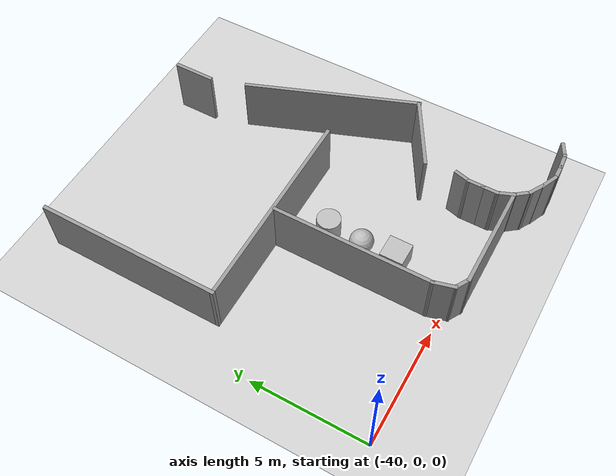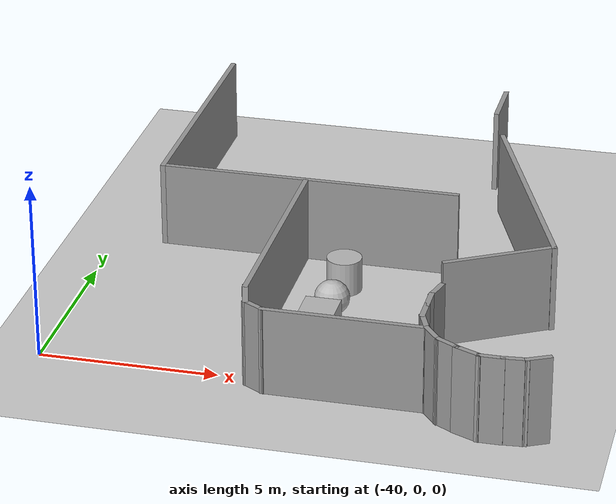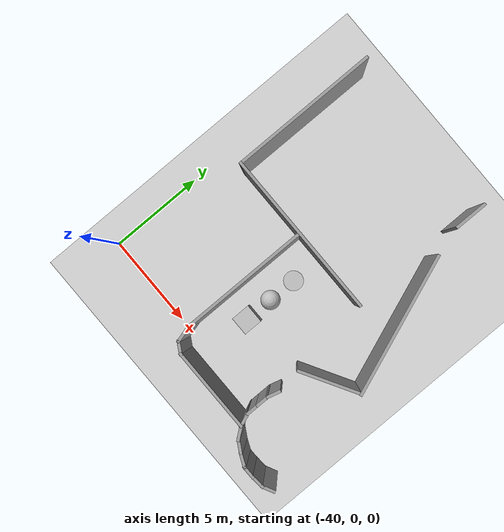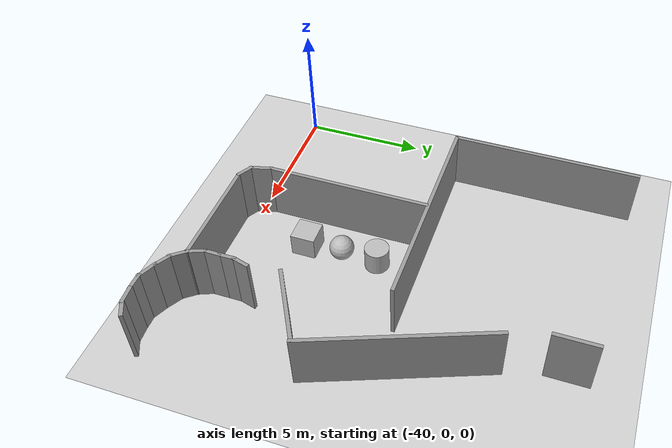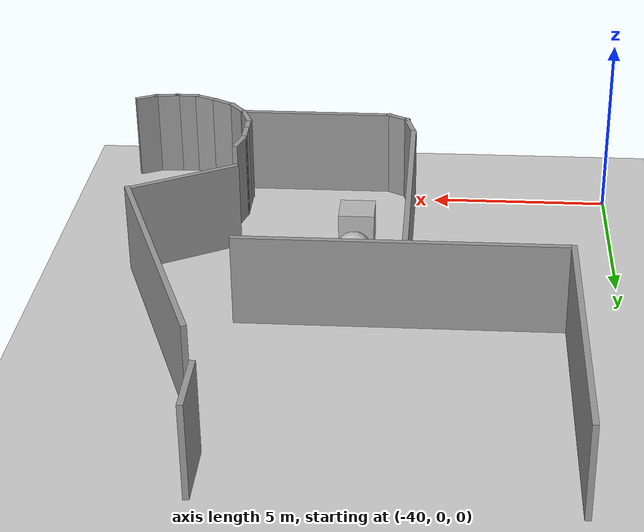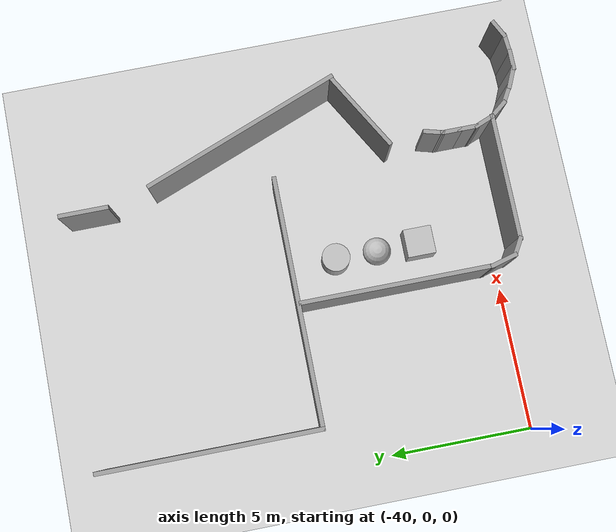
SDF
<sdf version="1.7">
 <world name="default">
  <model name="ground_plane">
   <static>1</static>
   <link name="link">
    <collision name="collision">
     <geometry><plane><normal>0 0 1</normal><size>100 100</size></plane></geometry>
     <surface>
      <contact><collide_bitmask>65535</collide_bitmask></contact>
      <friction><ode><mu>100</mu><mu2>50</mu2></ode></friction>
     </surface>
    </collision>
    <visual name="visual">
     <cast_shadows>0</cast_shadows>
     <geometry><plane><normal>0 0 1</normal><size>100 100</size></plane></geometry>
     <material>
      <script><uri>file://media/materials/scripts/gazebo.material</uri><name>Gazebo/Grey</name></script>
     </material>
    </visual>
   </link>
  </model>
  <model name="textured_shapes">
   <pose>-32.8558 4.0923 0.5 0 -0 0</pose>
   <link name="box">
    <pose>0 -1.5 0 0 -0 0</pose>
    <collision name="collision"><geometry><box><size>1 1 1</size></box></geometry></collision>
    <visual name="visual">
     <geometry><box><size>1 1 1</size></box></geometry>
     <material>
      <script>
       <uri>model://textured_shapes/materials/scripts</uri>
       <uri>model://textured_shapes/materials/textures</uri>
       <name>TexturedShape/Squares</name>
      </script>
     </material>
    </visual>
    <inertial>
     <inertia><ixx>1</ixx><ixy>0</ixy><ixz>0</ixz><iyy>1</iyy><iyz>0</iyz><izz>1</izz></inertia>
     <mass>1</mass>
    </inertial>
   </link>
   <link name="sphere">
    <collision name="collision"><geometry><sphere><radius>0.5</radius></sphere></geometry></collision>
    <visual name="visual">
     <geometry><sphere><radius>0.5</radius></sphere></geometry>
     <material>
      <script>
       <uri>model://textured_shapes/materials/scripts</uri>
       <uri>model://textured_shapes/materials/textures</uri>
       <name>TexturedShape/Squares</name>
      </script>
     </material>
    </visual>
    <inertial>
     <inertia><ixx>1</ixx><ixy>0</ixy><ixz>0</ixz><iyy>1</iyy><iyz>0</iyz><izz>1</izz></inertia>
     <mass>1</mass>
    </inertial>
   </link>
   <link name="cylinder">
    <pose>0 1.5 0 0 -0 0</pose>
    <collision name="collision">
     <geometry><cylinder><radius>0.5</radius><length>1</length></cylinder></geometry>
    </collision>
    <visual name="visual">
     <geometry><cylinder><radius>0.5</radius><length>1</length></cylinder></geometry>
     <material>
      <script>
       <uri>model://textured_shapes/materials/scripts</uri>
       <uri>model://textured_shapes/materials/textures</uri>
       <name>TexturedShape/Squares</name>
      </script>
     </material>
    </visual>
    <inertial>
     <inertia><ixx>1</ixx><ixy>0</ixy><ixz>0</ixz><iyy>1</iyy><iyz>0</iyz><izz>1</izz></inertia>
     <mass>1</mass>
    </inertial>
   </link>
  </model>
  <model name="museum">
   <link name="Wall_28">
    <pose>-17.892 1.3048 0 0 -0 3.14159</pose>
    <visual name="Wall_28_Visual">
     <pose>0 0 1.25 0 -0 0</pose>
     <geometry><box><size>8.75 0.15 2.5</size></box></geometry>
     <material>
      <script><uri>file://media/materials/scripts/gazebo.material</uri><name>Gazebo/Grey</name></script>
      <ambient>1 1 1 1</ambient>
      <shader type="pixel"/>
     </material>
     <meta><layer>0</layer></meta>
    </visual>
    <collision name="Wall_28_Collision">
     <pose>0 0 1.25 0 -0 0</pose>
     <geometry><box><size>8.75 0.15 2.5</size></box></geometry>
     <surface>
      <friction>
       <ode><mu>1</mu><mu2>1</mu2><fdir1>0 0 0</fdir1><slip1>0</slip1><slip2>0</slip2></ode>
       <torsional>
        <coefficient>1</coefficient>
        <patch_radius>0</patch_radius>
        <surface_radius>0</surface_radius>
        <use_patch_radius>1</use_patch_radius>
        <ode><slip>0</slip></ode>
       </torsional>
      </friction>
      <bounce><restitution_coefficient>0</restitution_coefficient><threshold>1e+06</threshold></bounce>
      <contact>
       <collide_without_contact>0</collide_without_contact>
       <collide_without_contact_bitmask>1</collide_without_contact_bitmask>
       <collide_bitmask>1</collide_bitmask>
       <ode>
        <soft_cfm>0</soft_cfm>
        <soft_erp>0.2</soft_erp>
        <kp>1e+13</kp>
        <kd>1</kd>
        <max_vel>0.01</max_vel>
        <min_depth>0</min_depth>
       </ode>
       <bullet>
        <split_impulse>1</split_impulse>
        <split_impulse_penetration_threshold>-0.01</split_impulse_penetration_threshold>
        <soft_cfm>0</soft_cfm>
        <soft_erp>0.2</soft_erp>
        <kp>1e+13</kp>
        <kd>1</kd>
       </bullet>
      </contact>
     </surface>
    </collision>
   </link>
   <link name="Wall_29">
    <pose>-22.192 5.1048 0 0 -0 1.5708</pose>
    <visual name="Wall_29_Visual">
     <pose>0 0 1.25 0 -0 0</pose>
     <geometry><box><size>7.75 0.15 2.5</size></box></geometry>
     <material>
      <script><uri>file://media/materials/scripts/gazebo.material</uri><name>Gazebo/Grey</name></script>
      <ambient>1 1 1 1</ambient>
      <shader type="pixel"/>
     </material>
     <meta><layer>0</layer></meta>
    </visual>
    <collision name="Wall_29_Collision">
     <pose>0 0 1.25 0 -0 0</pose>
     <geometry><box><size>7.75 0.15 2.5</size></box></geometry>
     <surface>
      <friction>
       <ode><mu>1</mu><mu2>1</mu2><fdir1>0 0 0</fdir1><slip1>0</slip1><slip2>0</slip2></ode>
       <torsional>
        <coefficient>1</coefficient>
        <patch_radius>0</patch_radius>
        <surface_radius>0</surface_radius>
        <use_patch_radius>1</use_patch_radius>
        <ode><slip>0</slip></ode>
       </torsional>
      </friction>
      <bounce><restitution_coefficient>0</restitution_coefficient><threshold>1e+06</threshold></bounce>
      <contact>
       <collide_without_contact>0</collide_without_contact>
       <collide_without_contact_bitmask>1</collide_without_contact_bitmask>
       <collide_bitmask>1</collide_bitmask>
       <ode>
        <soft_cfm>0</soft_cfm>
        <soft_erp>0.2</soft_erp>
        <kp>1e+13</kp>
        <kd>1</kd>
        <max_vel>0.01</max_vel>
        <min_depth>0</min_depth>
       </ode>
       <bullet>
        <split_impulse>1</split_impulse>
        <split_impulse_penetration_threshold>-0.01</split_impulse_penetration_threshold>
        <soft_cfm>0</soft_cfm>
        <soft_erp>0.2</soft_erp>
        <kp>1e+13</kp>
        <kd>1</kd>
       </bullet>
      </contact>
     </surface>
    </collision>
   </link>
   <link name="Wall_37">
    <pose>-17.9554 -2.08326 0 0 0 -1.5708</pose>
    <visual name="Wall_37_Visual">
     <pose>0 0 1.25 0 -0 0</pose>
     <geometry><box><size>6.75 0.15 2.5</size></box></geometry>
     <material>
      <script><uri>file://media/materials/scripts/gazebo.material</uri><name>Gazebo/Grey</name></script>
      <ambient>1 1 1 1</ambient>
      <shader type="pixel"/>
     </material>
     <meta><layer>0</layer></meta>
    </visual>
    <collision name="Wall_37_Collision">
     <pose>0 0 1.25 0 -0 0</pose>
     <geometry><box><size>6.75 0.15 2.5</size></box></geometry>
     <surface>
      <friction>
       <ode><mu>1</mu><mu2>1</mu2><fdir1>0 0 0</fdir1><slip1>0</slip1><slip2>0</slip2></ode>
       <torsional>
        <coefficient>1</coefficient>
        <patch_radius>0</patch_radius>
        <surface_radius>0</surface_radius>
        <use_patch_radius>1</use_patch_radius>
        <ode><slip>0</slip></ode>
       </torsional>
      </friction>
      <bounce><restitution_coefficient>0</restitution_coefficient><threshold>1e+06</threshold></bounce>
      <contact>
       <collide_without_contact>0</collide_without_contact>
       <collide_without_contact_bitmask>1</collide_without_contact_bitmask>
       <collide_bitmask>1</collide_bitmask>
       <ode>
        <soft_cfm>0</soft_cfm>
        <soft_erp>0.2</soft_erp>
        <kp>1e+13</kp>
        <kd>1</kd>
        <max_vel>0.01</max_vel>
        <min_depth>0</min_depth>
       </ode>
       <bullet>
        <split_impulse>1</split_impulse>
        <split_impulse_penetration_threshold>-0.01</split_impulse_penetration_threshold>
        <soft_cfm>0</soft_cfm>
        <soft_erp>0.2</soft_erp>
        <kp>1e+13</kp>
        <kd>1</kd>
       </bullet>
      </contact>
     </surface>
    </collision>
   </link>
   <link name="Wall_38">
    <pose>-17.8454 -5.79378 0 0 0 -1.309</pose>
    <visual name="Wall_38_Visual">
     <pose>0 0 1.25 0 -0 0</pose>
     <geometry><box><size>1 0.15 2.5</size></box></geometry>
     <material>
      <script><uri>file://media/materials/scripts/gazebo.material</uri><name>Gazebo/Grey</name></script>
      <ambient>1 1 1 1</ambient>
      <shader type="pixel"/>
     </material>
     <meta><layer>0</layer></meta>
    </visual>
    <collision name="Wall_38_Collision">
     <pose>0 0 1.25 0 -0 0</pose>
     <geometry><box><size>1 0.15 2.5</size></box></geometry>
     <surface>
      <friction>
       <ode><mu>1</mu><mu2>1</mu2><fdir1>0 0 0</fdir1><slip1>0</slip1><slip2>0</slip2></ode>
       <torsional>
        <coefficient>1</coefficient>
        <patch_radius>0</patch_radius>
        <surface_radius>0</surface_radius>
        <use_patch_radius>1</use_patch_radius>
        <ode><slip>0</slip></ode>
       </torsional>
      </friction>
      <bounce><restitution_coefficient>0</restitution_coefficient><threshold>1e+06</threshold></bounce>
      <contact>
       <collide_without_contact>0</collide_without_contact>
       <collide_without_contact_bitmask>1</collide_without_contact_bitmask>
       <collide_bitmask>1</collide_bitmask>
       <ode>
        <soft_cfm>0</soft_cfm>
        <soft_erp>0.2</soft_erp>
        <kp>1e+13</kp>
        <kd>1</kd>
        <max_vel>0.01</max_vel>
        <min_depth>0</min_depth>
       </ode>
       <bullet>
        <split_impulse>1</split_impulse>
        <split_impulse_penetration_threshold>-0.01</split_impulse_penetration_threshold>
        <soft_cfm>0</soft_cfm>
        <soft_erp>0.2</soft_erp>
        <kp>1e+13</kp>
        <kd>1</kd>
       </bullet>
      </contact>
     </surface>
    </collision>
   </link>
   <link name="Wall_39">
    <pose>-17.4756 -6.35429 0 0 0 -0.523599</pose>
    <visual name="Wall_39_Visual">
     <pose>0 0 1.25 0 -0 0</pose>
     <geometry><box><size>0.75 0.15 2.5</size></box></geometry>
     <material>
      <script><uri>file://media/materials/scripts/gazebo.material</uri><name>Gazebo/Grey</name></script>
      <ambient>1 1 1 1</ambient>
      <shader type="pixel"/>
     </material>
     <meta><layer>0</layer></meta>
    </visual>
    <collision name="Wall_39_Collision">
     <pose>0 0 1.25 0 -0 0</pose>
     <geometry><box><size>0.75 0.15 2.5</size></box></geometry>
     <surface>
      <friction>
       <ode><mu>1</mu><mu2>1</mu2><fdir1>0 0 0</fdir1><slip1>0</slip1><slip2>0</slip2></ode>
       <torsional>
        <coefficient>1</coefficient>
        <patch_radius>0</patch_radius>
        <surface_radius>0</surface_radius>
        <use_patch_radius>1</use_patch_radius>
        <ode><slip>0</slip></ode>
       </torsional>
      </friction>
      <bounce><restitution_coefficient>0</restitution_coefficient><threshold>1e+06</threshold></bounce>
      <contact>
       <collide_without_contact>0</collide_without_contact>
       <collide_without_contact_bitmask>1</collide_without_contact_bitmask>
       <collide_bitmask>1</collide_bitmask>
       <ode>
        <soft_cfm>0</soft_cfm>
        <soft_erp>0.2</soft_erp>
        <kp>1e+13</kp>
        <kd>1</kd>
        <max_vel>0.01</max_vel>
        <min_depth>0</min_depth>
       </ode>
       <bullet>
        <split_impulse>1</split_impulse>
        <split_impulse_penetration_threshold>-0.01</split_impulse_penetration_threshold>
        <soft_cfm>0</soft_cfm>
        <soft_erp>0.2</soft_erp>
        <kp>1e+13</kp>
        <kd>1</kd>
       </bullet>
      </contact>
     </surface>
    </collision>
   </link>
   <link name="Wall_40">
    <pose>-15.0408 -6.50429 0 0 -0 0</pose>
    <visual name="Wall_40_Visual">
     <pose>0 0 1.25 0 -0 0</pose>
     <geometry><box><size>4.5 0.15 2.5</size></box></geometry>
     <material>
      <script><uri>file://media/materials/scripts/gazebo.material</uri><name>Gazebo/Grey</name></script>
      <ambient>1 1 1 1</ambient>
      <shader type="pixel"/>
     </material>
     <meta><layer>0</layer></meta>
    </visual>
    <collision name="Wall_40_Collision">
     <pose>0 0 1.25 0 -0 0</pose>
     <geometry><box><size>4.5 0.15 2.5</size></box></geometry>
     <surface>
      <friction>
       <ode><mu>1</mu><mu2>1</mu2><fdir1>0 0 0</fdir1><slip1>0</slip1><slip2>0</slip2></ode>
       <torsional>
        <coefficient>1</coefficient>
        <patch_radius>0</patch_radius>
        <surface_radius>0</surface_radius>
        <use_patch_radius>1</use_patch_radius>
        <ode><slip>0</slip></ode>
       </torsional>
      </friction>
      <bounce><restitution_coefficient>0</restitution_coefficient><threshold>1e+06</threshold></bounce>
      <contact>
       <collide_without_contact>0</collide_without_contact>
       <collide_without_contact_bitmask>1</collide_without_contact_bitmask>
       <collide_bitmask>1</collide_bitmask>
       <ode>
        <soft_cfm>0</soft_cfm>
        <soft_erp>0.2</soft_erp>
        <kp>1e+13</kp>
        <kd>1</kd>
        <max_vel>0.01</max_vel>
        <min_depth>0</min_depth>
       </ode>
       <bullet>
        <split_impulse>1</split_impulse>
        <split_impulse_penetration_threshold>-0.01</split_impulse_penetration_threshold>
        <soft_cfm>0</soft_cfm>
        <soft_erp>0.2</soft_erp>
        <kp>1e+13</kp>
        <kd>1</kd>
       </bullet>
      </contact>
     </surface>
    </collision>
   </link>
   <link name="Wall_42">
    <pose>-11.7118 2.12032 0 0 0 -1.20553</pose>
    <visual name="Wall_42_Visual">
     <pose>0 0 1.25 0 -0 0</pose>
     <geometry><box><size>7.48995 0.15 2.5</size></box></geometry>
     <material>
      <script><uri>file://media/materials/scripts/gazebo.material</uri><name>Gazebo/Grey</name></script>
      <ambient>1 1 1 1</ambient>
      <shader type="pixel"/>
     </material>
     <meta><layer>0</layer></meta>
    </visual>
    <collision name="Wall_42_Collision">
     <pose>0 0 1.25 0 -0 0</pose>
     <geometry><box><size>7.48995 0.15 2.5</size></box></geometry>
     <surface>
      <friction>
       <ode><mu>1</mu><mu2>1</mu2><fdir1>0 0 0</fdir1><slip1>0</slip1><slip2>0</slip2></ode>
       <torsional>
        <coefficient>1</coefficient>
        <patch_radius>0</patch_radius>
        <surface_radius>0</surface_radius>
        <use_patch_radius>1</use_patch_radius>
        <ode><slip>0</slip></ode>
       </torsional>
      </friction>
      <bounce><restitution_coefficient>0</restitution_coefficient><threshold>1e+06</threshold></bounce>
      <contact>
       <collide_without_contact>0</collide_without_contact>
       <collide_without_contact_bitmask>1</collide_without_contact_bitmask>
       <collide_bitmask>1</collide_bitmask>
       <ode>
        <soft_cfm>0</soft_cfm>
        <soft_erp>0.2</soft_erp>
        <kp>1e+13</kp>
        <kd>1</kd>
        <max_vel>0.01</max_vel>
        <min_depth>0</min_depth>
       </ode>
       <bullet>
        <split_impulse>1</split_impulse>
        <split_impulse_penetration_threshold>-0.01</split_impulse_penetration_threshold>
        <soft_cfm>0</soft_cfm>
        <soft_erp>0.2</soft_erp>
        <kp>1e+13</kp>
        <kd>1</kd>
       </bullet>
      </contact>
     </surface>
    </collision>
   </link>
   <link name="Wall_43">
    <pose>-11.7694 -2.05631 0 0 0 -2.61799</pose>
    <visual name="Wall_43_Visual">
     <pose>0 0 1.25 0 -0 0</pose>
     <geometry><box><size>3.25 0.15 2.5</size></box></geometry>
     <material>
      <script><uri>file://media/materials/scripts/gazebo.material</uri><name>Gazebo/Grey</name></script>
      <ambient>1 1 1 1</ambient>
      <shader type="pixel"/>
     </material>
     <meta><layer>0</layer></meta>
    </visual>
    <collision name="Wall_43_Collision">
     <pose>0 0 1.25 0 -0 0</pose>
     <geometry><box><size>3.25 0.15 2.5</size></box></geometry>
     <surface>
      <friction>
       <ode><mu>1</mu><mu2>1</mu2><fdir1>0 0 0</fdir1><slip1>0</slip1><slip2>0</slip2></ode>
       <torsional>
        <coefficient>1</coefficient>
        <patch_radius>0</patch_radius>
        <surface_radius>0</surface_radius>
        <use_patch_radius>1</use_patch_radius>
        <ode><slip>0</slip></ode>
       </torsional>
      </friction>
      <bounce><restitution_coefficient>0</restitution_coefficient><threshold>1e+06</threshold></bounce>
      <contact>
       <collide_without_contact>0</collide_without_contact>
       <collide_without_contact_bitmask>1</collide_without_contact_bitmask>
       <collide_bitmask>1</collide_bitmask>
       <ode>
        <soft_cfm>0</soft_cfm>
        <soft_erp>0.2</soft_erp>
        <kp>1e+13</kp>
        <kd>1</kd>
        <max_vel>0.01</max_vel>
        <min_depth>0</min_depth>
       </ode>
       <bullet>
        <split_impulse>1</split_impulse>
        <split_impulse_penetration_threshold>-0.01</split_impulse_penetration_threshold>
        <soft_cfm>0</soft_cfm>
        <soft_erp>0.2</soft_erp>
        <kp>1e+13</kp>
        <kd>1</kd>
       </bullet>
      </contact>
     </surface>
    </collision>
   </link>
   <link name="Wall_50">
    <pose>-13.4774 7.89976 0 0 -0 1.5708</pose>
    <visual name="Wall_50_Visual">
     <pose>0 0 1.25 0 -0 0</pose>
     <geometry><box><size>1.75 0.15 2.5</size></box></geometry>
     <material>
      <script><uri>file://media/materials/scripts/gazebo.material</uri><name>Gazebo/Grey</name></script>
      <ambient>1 1 1 1</ambient>
      <shader type="pixel"/>
     </material>
     <meta><layer>0</layer></meta>
    </visual>
    <collision name="Wall_50_Collision">
     <pose>0 0 1.25 0 -0 0</pose>
     <geometry><box><size>1.75 0.15 2.5</size></box></geometry>
     <surface>
      <friction>
       <ode><mu>1</mu><mu2>1</mu2><fdir1>0 0 0</fdir1><slip1>0</slip1><slip2>0</slip2></ode>
       <torsional>
        <coefficient>1</coefficient>
        <patch_radius>0</patch_radius>
        <surface_radius>0</surface_radius>
        <use_patch_radius>1</use_patch_radius>
        <ode><slip>0</slip></ode>
       </torsional>
      </friction>
      <bounce><restitution_coefficient>0</restitution_coefficient><threshold>1e+06</threshold></bounce>
      <contact>
       <collide_without_contact>0</collide_without_contact>
       <collide_without_contact_bitmask>1</collide_without_contact_bitmask>
       <collide_bitmask>1</collide_bitmask>
       <ode>
        <soft_cfm>0</soft_cfm>
        <soft_erp>0.2</soft_erp>
        <kp>1e+13</kp>
        <kd>1</kd>
        <max_vel>0.01</max_vel>
        <min_depth>0</min_depth>
       </ode>
       <bullet>
        <split_impulse>1</split_impulse>
        <split_impulse_penetration_threshold>-0.01</split_impulse_penetration_threshold>
        <soft_cfm>0</soft_cfm>
        <soft_erp>0.2</soft_erp>
        <kp>1e+13</kp>
        <kd>1</kd>
       </bullet>
      </contact>
     </surface>
    </collision>
   </link>
   <link name="Wall_64">
    <pose>-13.0283 -4.40753 0 0 0 -1.8326</pose>
    <visual name="Wall_64_Visual">
     <pose>0 0 1.25 0 -0 0</pose>
     <geometry><box><size>0.75 0.15 2.5</size></box></geometry>
     <material>
      <script><uri>file://media/materials/scripts/gazebo.material</uri><name>Gazebo/Grey</name></script>
      <ambient>1 1 1 1</ambient>
      <shader type="pixel"/>
     </material>
     <meta><layer>0</layer></meta>
    </visual>
    <collision name="Wall_64_Collision">
     <pose>0 0 1.25 0 -0 0</pose>
     <geometry><box><size>0.75 0.15 2.5</size></box></geometry>
     <surface>
      <friction>
       <ode><mu>1</mu><mu2>1</mu2><fdir1>0 0 0</fdir1><slip1>0</slip1><slip2>0</slip2></ode>
       <torsional>
        <coefficient>1</coefficient>
        <patch_radius>0</patch_radius>
        <surface_radius>0</surface_radius>
        <use_patch_radius>1</use_patch_radius>
        <ode><slip>0</slip></ode>
       </torsional>
      </friction>
      <bounce><restitution_coefficient>0</restitution_coefficient><threshold>1e+06</threshold></bounce>
      <contact>
       <collide_without_contact>0</collide_without_contact>
       <collide_without_contact_bitmask>1</collide_without_contact_bitmask>
       <collide_bitmask>1</collide_bitmask>
       <ode>
        <soft_cfm>0</soft_cfm>
        <soft_erp>0.2</soft_erp>
        <kp>1e+13</kp>
        <kd>1</kd>
        <max_vel>0.01</max_vel>
        <min_depth>0</min_depth>
       </ode>
       <bullet>
        <split_impulse>1</split_impulse>
        <split_impulse_penetration_threshold>-0.01</split_impulse_penetration_threshold>
        <soft_cfm>0</soft_cfm>
        <soft_erp>0.2</soft_erp>
        <kp>1e+13</kp>
        <kd>1</kd>
       </bullet>
      </contact>
     </surface>
    </collision>
   </link>
   <link name="Wall_65">
    <pose>-13.106 -4.99731 0 0 0 -1.5708</pose>
    <visual name="Wall_65_Visual">
     <pose>0 0 1.25 0 -0 0</pose>
     <geometry><box><size>0.75 0.15 2.5</size></box></geometry>
     <material>
      <script><uri>file://media/materials/scripts/gazebo.material</uri><name>Gazebo/Grey</name></script>
      <ambient>1 1 1 1</ambient>
      <shader type="pixel"/>
     </material>
     <meta><layer>0</layer></meta>
    </visual>
    <collision name="Wall_65_Collision">
     <pose>0 0 1.25 0 -0 0</pose>
     <geometry><box><size>0.75 0.15 2.5</size></box></geometry>
     <surface>
      <friction>
       <ode><mu>1</mu><mu2>1</mu2><fdir1>0 0 0</fdir1><slip1>0</slip1><slip2>0</slip2></ode>
       <torsional>
        <coefficient>1</coefficient>
        <patch_radius>0</patch_radius>
        <surface_radius>0</surface_radius>
        <use_patch_radius>1</use_patch_radius>
        <ode><slip>0</slip></ode>
       </torsional>
      </friction>
      <bounce><restitution_coefficient>0</restitution_coefficient><threshold>1e+06</threshold></bounce>
      <contact>
       <collide_without_contact>0</collide_without_contact>
       <collide_without_contact_bitmask>1</collide_without_contact_bitmask>
       <collide_bitmask>1</collide_bitmask>
       <ode>
        <soft_cfm>0</soft_cfm>
        <soft_erp>0.2</soft_erp>
        <kp>1e+13</kp>
        <kd>1</kd>
        <max_vel>0.01</max_vel>
        <min_depth>0</min_depth>
       </ode>
       <bullet>
        <split_impulse>1</split_impulse>
        <split_impulse_penetration_threshold>-0.01</split_impulse_penetration_threshold>
        <soft_cfm>0</soft_cfm>
        <soft_erp>0.2</soft_erp>
        <kp>1e+13</kp>
        <kd>1</kd>
       </bullet>
      </contact>
     </surface>
    </collision>
   </link>
   <link name="Wall_66">
    <pose>-13.106 -5.59731 0 0 0 -1.5708</pose>
    <visual name="Wall_66_Visual">
     <pose>0 0 1.25 0 -0 0</pose>
     <geometry><box><size>0.75 0.15 2.5</size></box></geometry>
     <material>
      <script><uri>file://media/materials/scripts/gazebo.material</uri><name>Gazebo/Grey</name></script>
      <ambient>1 1 1 1</ambient>
      <shader type="pixel"/>
     </material>
     <meta><layer>0</layer></meta>
    </visual>
    <collision name="Wall_66_Collision">
     <pose>0 0 1.25 0 -0 0</pose>
     <geometry><box><size>0.75 0.15 2.5</size></box></geometry>
     <surface>
      <friction>
       <ode><mu>1</mu><mu2>1</mu2><fdir1>0 0 0</fdir1><slip1>0</slip1><slip2>0</slip2></ode>
       <torsional>
        <coefficient>1</coefficient>
        <patch_radius>0</patch_radius>
        <surface_radius>0</surface_radius>
        <use_patch_radius>1</use_patch_radius>
        <ode><slip>0</slip></ode>
       </torsional>
      </friction>
      <bounce><restitution_coefficient>0</restitution_coefficient><threshold>1e+06</threshold></bounce>
      <contact>
       <collide_without_contact>0</collide_without_contact>
       <collide_without_contact_bitmask>1</collide_without_contact_bitmask>
       <collide_bitmask>1</collide_bitmask>
       <ode>
        <soft_cfm>0</soft_cfm>
        <soft_erp>0.2</soft_erp>
        <kp>1e+13</kp>
        <kd>1</kd>
        <max_vel>0.01</max_vel>
        <min_depth>0</min_depth>
       </ode>
       <bullet>
        <split_impulse>1</split_impulse>
        <split_impulse_penetration_threshold>-0.01</split_impulse_penetration_threshold>
        <soft_cfm>0</soft_cfm>
        <soft_erp>0.2</soft_erp>
        <kp>1e+13</kp>
        <kd>1</kd>
       </bullet>
      </contact>
     </surface>
    </collision>
   </link>
   <link name="Wall_67">
    <pose>-12.9859 -6.2008 0 0 0 -1.19405</pose>
    <visual name="Wall_67_Visual">
     <pose>0 0 1.25 0 -0 0</pose>
     <geometry><box><size>0.802768 0.15 2.5</size></box></geometry>
     <material>
      <script><uri>file://media/materials/scripts/gazebo.material</uri><name>Gazebo/Grey</name></script>
      <ambient>1 1 1 1</ambient>
      <shader type="pixel"/>
     </material>
     <meta><layer>0</layer></meta>
    </visual>
    <collision name="Wall_67_Collision">
     <pose>0 0 1.25 0 -0 0</pose>
     <geometry><box><size>0.802768 0.15 2.5</size></box></geometry>
     <surface>
      <friction>
       <ode><mu>1</mu><mu2>1</mu2><fdir1>0 0 0</fdir1><slip1>0</slip1><slip2>0</slip2></ode>
       <torsional>
        <coefficient>1</coefficient>
        <patch_radius>0</patch_radius>
        <surface_radius>0</surface_radius>
        <use_patch_radius>1</use_patch_radius>
        <ode><slip>0</slip></ode>
       </torsional>
      </friction>
      <bounce><restitution_coefficient>0</restitution_coefficient><threshold>1e+06</threshold></bounce>
      <contact>
       <collide_without_contact>0</collide_without_contact>
       <collide_without_contact_bitmask>1</collide_without_contact_bitmask>
       <collide_bitmask>1</collide_bitmask>
       <ode>
        <soft_cfm>0</soft_cfm>
        <soft_erp>0.2</soft_erp>
        <kp>1e+13</kp>
        <kd>1</kd>
        <max_vel>0.01</max_vel>
        <min_depth>0</min_depth>
       </ode>
       <bullet>
        <split_impulse>1</split_impulse>
        <split_impulse_penetration_threshold>-0.01</split_impulse_penetration_threshold>
        <soft_cfm>0</soft_cfm>
        <soft_erp>0.2</soft_erp>
        <kp>1e+13</kp>
        <kd>1</kd>
       </bullet>
      </contact>
     </surface>
    </collision>
   </link>
   <link name="Wall_68">
    <pose>-12.6634 -6.76168 0 0 0 -0.904332</pose>
    <visual name="Wall_68_Visual">
     <pose>0 0 1.25 0 -0 0</pose>
     <geometry><box><size>0.804908 0.15 2.5</size></box></geometry>
     <material>
      <script><uri>file://media/materials/scripts/gazebo.material</uri><name>Gazebo/Grey</name></script>
      <ambient>1 1 1 1</ambient>
      <shader type="pixel"/>
     </material>
     <meta><layer>0</layer></meta>
    </visual>
    <collision name="Wall_68_Collision">
     <pose>0 0 1.25 0 -0 0</pose>
     <geometry><box><size>0.804908 0.15 2.5</size></box></geometry>
     <surface>
      <friction>
       <ode><mu>1</mu><mu2>1</mu2><fdir1>0 0 0</fdir1><slip1>0</slip1><slip2>0</slip2></ode>
       <torsional>
        <coefficient>1</coefficient>
        <patch_radius>0</patch_radius>
        <surface_radius>0</surface_radius>
        <use_patch_radius>1</use_patch_radius>
        <ode><slip>0</slip></ode>
       </torsional>
      </friction>
      <bounce><restitution_coefficient>0</restitution_coefficient><threshold>1e+06</threshold></bounce>
      <contact>
       <collide_without_contact>0</collide_without_contact>
       <collide_without_contact_bitmask>1</collide_without_contact_bitmask>
       <collide_bitmask>1</collide_bitmask>
       <ode>
        <soft_cfm>0</soft_cfm>
        <soft_erp>0.2</soft_erp>
        <kp>1e+13</kp>
        <kd>1</kd>
        <max_vel>0.01</max_vel>
        <min_depth>0</min_depth>
       </ode>
       <bullet>
        <split_impulse>1</split_impulse>
        <split_impulse_penetration_threshold>-0.01</split_impulse_penetration_threshold>
        <soft_cfm>0</soft_cfm>
        <soft_erp>0.2</soft_erp>
        <kp>1e+13</kp>
        <kd>1</kd>
       </bullet>
      </contact>
     </surface>
    </collision>
   </link>
   <link name="Wall_69">
    <pose>-12.1947 -7.1626 0 0 0 -0.523599</pose>
    <visual name="Wall_69_Visual">
     <pose>0 0 1.25 0 -0 0</pose>
     <geometry><box><size>0.75 0.15 2.5</size></box></geometry>
     <material>
      <script><uri>file://media/materials/scripts/gazebo.material</uri><name>Gazebo/Grey</name></script>
      <ambient>1 1 1 1</ambient>
      <shader type="pixel"/>
     </material>
     <meta><layer>0</layer></meta>
    </visual>
    <collision name="Wall_69_Collision">
     <pose>0 0 1.25 0 -0 0</pose>
     <geometry><box><size>0.75 0.15 2.5</size></box></geometry>
     <surface>
      <friction>
       <ode><mu>1</mu><mu2>1</mu2><fdir1>0 0 0</fdir1><slip1>0</slip1><slip2>0</slip2></ode>
       <torsional>
        <coefficient>1</coefficient>
        <patch_radius>0</patch_radius>
        <surface_radius>0</surface_radius>
        <use_patch_radius>1</use_patch_radius>
        <ode><slip>0</slip></ode>
       </torsional>
      </friction>
      <bounce><restitution_coefficient>0</restitution_coefficient><threshold>1e+06</threshold></bounce>
      <contact>
       <collide_without_contact>0</collide_without_contact>
       <collide_without_contact_bitmask>1</collide_without_contact_bitmask>
       <collide_bitmask>1</collide_bitmask>
       <ode>
        <soft_cfm>0</soft_cfm>
        <soft_erp>0.2</soft_erp>
        <kp>1e+13</kp>
        <kd>1</kd>
        <max_vel>0.01</max_vel>
        <min_depth>0</min_depth>
       </ode>
       <bullet>
        <split_impulse>1</split_impulse>
        <split_impulse_penetration_threshold>-0.01</split_impulse_penetration_threshold>
        <soft_cfm>0</soft_cfm>
        <soft_erp>0.2</soft_erp>
        <kp>1e+13</kp>
        <kd>1</kd>
       </bullet>
      </contact>
     </surface>
    </collision>
   </link>
   <link name="Wall_70">
    <pose>-11.6192 -7.46135 0 0 0 -0.415978</pose>
    <visual name="Wall_70_Visual">
     <pose>0 0 1.25 0 -0 0</pose>
     <geometry><box><size>0.853717 0.15 2.5</size></box></geometry>
     <material>
      <script><uri>file://media/materials/scripts/gazebo.material</uri><name>Gazebo/Grey</name></script>
      <ambient>1 1 1 1</ambient>
      <shader type="pixel"/>
     </material>
     <meta><layer>0</layer></meta>
    </visual>
    <collision name="Wall_70_Collision">
     <pose>0 0 1.25 0 -0 0</pose>
     <geometry><box><size>0.853717 0.15 2.5</size></box></geometry>
     <surface>
      <friction>
       <ode><mu>1</mu><mu2>1</mu2><fdir1>0 0 0</fdir1><slip1>0</slip1><slip2>0</slip2></ode>
       <torsional>
        <coefficient>1</coefficient>
        <patch_radius>0</patch_radius>
        <surface_radius>0</surface_radius>
        <use_patch_radius>1</use_patch_radius>
        <ode><slip>0</slip></ode>
       </torsional>
      </friction>
      <bounce><restitution_coefficient>0</restitution_coefficient><threshold>1e+06</threshold></bounce>
      <contact>
       <collide_without_contact>0</collide_without_contact>
       <collide_without_contact_bitmask>1</collide_without_contact_bitmask>
       <collide_bitmask>1</collide_bitmask>
       <ode>
        <soft_cfm>0</soft_cfm>
        <soft_erp>0.2</soft_erp>
        <kp>1e+13</kp>
        <kd>1</kd>
        <max_vel>0.01</max_vel>
        <min_depth>0</min_depth>
       </ode>
       <bullet>
        <split_impulse>1</split_impulse>
        <split_impulse_penetration_threshold>-0.01</split_impulse_penetration_threshold>
        <soft_cfm>0</soft_cfm>
        <soft_erp>0.2</soft_erp>
        <kp>1e+13</kp>
        <kd>1</kd>
       </bullet>
      </contact>
     </surface>
    </collision>
   </link>
   <link name="Wall_71">
    <pose>-11.0036 -7.6101 0 0 -0 0</pose>
    <visual name="Wall_71_Visual">
     <pose>0 0 1.25 0 -0 0</pose>
     <geometry><box><size>0.75 0.15 2.5</size></box></geometry>
     <material>
      <script><uri>file://media/materials/scripts/gazebo.material</uri><name>Gazebo/Grey</name></script>
      <ambient>1 1 1 1</ambient>
      <shader type="pixel"/>
     </material>
     <meta><layer>0</layer></meta>
    </visual>
    <collision name="Wall_71_Collision">
     <pose>0 0 1.25 0 -0 0</pose>
     <geometry><box><size>0.75 0.15 2.5</size></box></geometry>
     <surface>
      <friction>
       <ode><mu>1</mu><mu2>1</mu2><fdir1>0 0 0</fdir1><slip1>0</slip1><slip2>0</slip2></ode>
       <torsional>
        <coefficient>1</coefficient>
        <patch_radius>0</patch_radius>
        <surface_radius>0</surface_radius>
        <use_patch_radius>1</use_patch_radius>
        <ode><slip>0</slip></ode>
       </torsional>
      </friction>
      <bounce><restitution_coefficient>0</restitution_coefficient><threshold>1e+06</threshold></bounce>
      <contact>
       <collide_without_contact>0</collide_without_contact>
       <collide_without_contact_bitmask>1</collide_without_contact_bitmask>
       <collide_bitmask>1</collide_bitmask>
       <ode>
        <soft_cfm>0</soft_cfm>
        <soft_erp>0.2</soft_erp>
        <kp>1e+13</kp>
        <kd>1</kd>
        <max_vel>0.01</max_vel>
        <min_depth>0</min_depth>
       </ode>
       <bullet>
        <split_impulse>1</split_impulse>
        <split_impulse_penetration_threshold>-0.01</split_impulse_penetration_threshold>
        <soft_cfm>0</soft_cfm>
        <soft_erp>0.2</soft_erp>
        <kp>1e+13</kp>
        <kd>1</kd>
       </bullet>
      </contact>
     </surface>
    </collision>
   </link>
   <link name="Wall_72">
    <pose>-10.3944 -7.57771 0 0 -0 0.085453</pose>
    <visual name="Wall_72_Visual">
     <pose>0 0 1.25 0 -0 0</pose>
     <geometry><box><size>0.75763 0.15 2.5</size></box></geometry>
     <material>
      <script><uri>file://media/materials/scripts/gazebo.material</uri><name>Gazebo/Grey</name></script>
      <ambient>1 1 1 1</ambient>
      <shader type="pixel"/>
     </material>
     <meta><layer>0</layer></meta>
    </visual>
    <collision name="Wall_72_Collision">
     <pose>0 0 1.25 0 -0 0</pose>
     <geometry><box><size>0.75763 0.15 2.5</size></box></geometry>
     <surface>
      <friction>
       <ode><mu>1</mu><mu2>1</mu2><fdir1>0 0 0</fdir1><slip1>0</slip1><slip2>0</slip2></ode>
       <torsional>
        <coefficient>1</coefficient>
        <patch_radius>0</patch_radius>
        <surface_radius>0</surface_radius>
        <use_patch_radius>1</use_patch_radius>
        <ode><slip>0</slip></ode>
       </torsional>
      </friction>
      <bounce><restitution_coefficient>0</restitution_coefficient><threshold>1e+06</threshold></bounce>
      <contact>
       <collide_without_contact>0</collide_without_contact>
       <collide_without_contact_bitmask>1</collide_without_contact_bitmask>
       <collide_bitmask>1</collide_bitmask>
       <ode>
        <soft_cfm>0</soft_cfm>
        <soft_erp>0.2</soft_erp>
        <kp>1e+13</kp>
        <kd>1</kd>
        <max_vel>0.01</max_vel>
        <min_depth>0</min_depth>
       </ode>
       <bullet>
        <split_impulse>1</split_impulse>
        <split_impulse_penetration_threshold>-0.01</split_impulse_penetration_threshold>
        <soft_cfm>0</soft_cfm>
        <soft_erp>0.2</soft_erp>
        <kp>1e+13</kp>
        <kd>1</kd>
       </bullet>
      </contact>
     </surface>
    </collision>
   </link>
   <link name="Wall_73">
    <pose>-9.83191 -7.41471 0 0 -0 0.46581</pose>
    <visual name="Wall_73_Visual">
     <pose>0 0 1.25 0 -0 0</pose>
     <geometry><box><size>0.731578 0.15 2.5</size></box></geometry>
     <material>
      <script><uri>file://media/materials/scripts/gazebo.material</uri><name>Gazebo/Grey</name></script>
      <ambient>1 1 1 1</ambient>
      <shader type="pixel"/>
     </material>
     <meta><layer>0</layer></meta>
    </visual>
    <collision name="Wall_73_Collision">
     <pose>0 0 1.25 0 -0 0</pose>
     <geometry><box><size>0.731578 0.15 2.5</size></box></geometry>
     <surface>
      <friction>
       <ode><mu>1</mu><mu2>1</mu2><fdir1>0 0 0</fdir1><slip1>0</slip1><slip2>0</slip2></ode>
       <torsional>
        <coefficient>1</coefficient>
        <patch_radius>0</patch_radius>
        <surface_radius>0</surface_radius>
        <use_patch_radius>1</use_patch_radius>
        <ode><slip>0</slip></ode>
       </torsional>
      </friction>
      <bounce><restitution_coefficient>0</restitution_coefficient><threshold>1e+06</threshold></bounce>
      <contact>
       <collide_without_contact>0</collide_without_contact>
       <collide_without_contact_bitmask>1</collide_without_contact_bitmask>
       <collide_bitmask>1</collide_bitmask>
       <ode>
        <soft_cfm>0</soft_cfm>
        <soft_erp>0.2</soft_erp>
        <kp>1e+13</kp>
        <kd>1</kd>
        <max_vel>0.01</max_vel>
        <min_depth>0</min_depth>
       </ode>
       <bullet>
        <split_impulse>1</split_impulse>
        <split_impulse_penetration_threshold>-0.01</split_impulse_penetration_threshold>
        <soft_cfm>0</soft_cfm>
        <soft_erp>0.2</soft_erp>
        <kp>1e+13</kp>
        <kd>1</kd>
       </bullet>
      </contact>
     </surface>
    </collision>
   </link>
   <static>1</static>
   <pose>-16.4037 5.92571 0 0 -0 0</pose>
  </model>
 </world>
</sdf>
